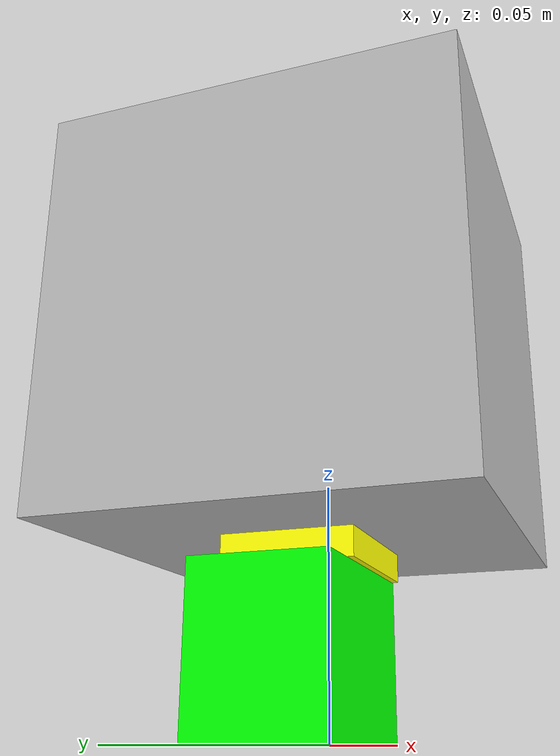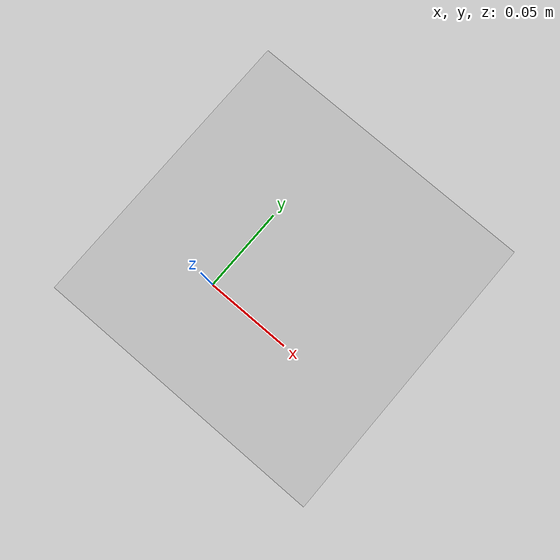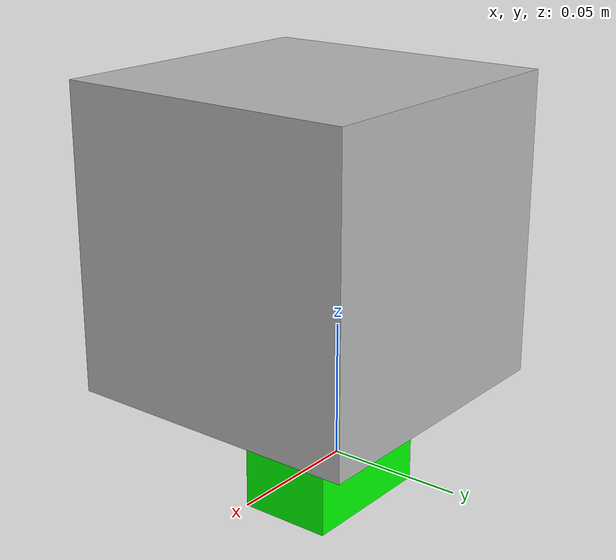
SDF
<?xml version='1.0'?>
<sdf version='1.4'>
  <model name="d_diff_drive_robot">

     <link name='Motor1'>
        <pose>0.025 0.016 0.019 0 0 0</pose>
 	<inertial>
	 <mass>56</mass>
	</inertial>
       <collision name='collision'>
          <geometry>
            <box>
              <size>.05 .032 .038</size>
            </box>
          </geometry>
        </collision>

        <visual name='visual'>
          <geometry>
            <box>
              <size>.05 .032 .038</size>
            </box>
          </geometry>
	  <material>
	    <ambient>0 1 0 1</ambient>
	      <diffuse>0 1 0 1</diffuse>
	      <specular>0.1 0.1 0.1 1</specular>
	      <emissive>0 0 0 0</emissive>
	  </material>
        </visual>

  </link>
     <link name='Motor2'>
  	  <pose>0.036 0.016 0.064 0 0 0</pose>

        <collision name='collision'>
          <geometry>
            <box>
              <size>.038 .032 .050</size>
            </box>
          </geometry>
        </collision>

        <visual name='visual'>
          <geometry>
            <box>
              <size>.038 .032 .050</size>
            </box>
          </geometry>
	  <material>
	    <ambient>1 1 0 1</ambient>
	      <diffuse>1 1 0 1</diffuse>
	      <specular>0.1 0.1 0.1 1</specular>
	      <emissive>0 0 0 0</emissive>
	  </material>
        </visual>

  </link>

<!-- MotorTop1 -->

  <link name="MotorTop1">
    <pose>0.036 0.016 0.039 0 0 0</pose>
    <collision name="collision">
      <geometry>
        <cylinder>
          <radius>.011</radius>
          <length>.002</length>
        </cylinder>
      </geometry>
    </collision>
    <visual name="visual">
      <geometry>
        <cylinder>
          <radius>.011</radius>
          <length>.002</length>
        </cylinder>
      </geometry>
    </visual>
  </link>

<!-- MotorTop2 -->

  <link name="MotorTop2">
  	  <pose>0.037 0.0 0.075 1.570796327 0 0</pose>
    <collision name="collision">
      <geometry>
        <cylinder>
          <radius>.011</radius>
          <length>.002</length>
        </cylinder>
      </geometry>
    </collision>
    <visual name="visual">
      <geometry>
        <cylinder>
          <radius>.011</radius>
          <length>.002</length>
        </cylinder>
      </geometry>
    </visual>
  </link>

<!-- Axel -->
<joint type="revolute" name="right_wheel_hinge">

    <pose>0.00 0.00 -0.01 0 0 0</pose>
    <child>MotorTop1</child>
    <parent>Motor1</parent>
    <axis>
      <xyz>0 0 1</xyz>
    </axis>
  </joint>

  <joint type="revolute" name="MotorTop1_Motor2">

    <pose>0 0 0.0 0 0 0</pose>
    <child>Motor2</child>
    <parent>MotorTop1</parent>
    <axis>
      <xyz>0 0 1</xyz>
      <limit>
        <upper>0</upper>
        <lower>0</lower>
      </limit>
    </axis>
  </joint>

<joint type="revolute" name="left_wheel_hinge">

  	  <pose>-0.0 0.0 0.0 0 0 0</pose>
    <child>MotorTop2</child>
    <parent>Motor2</parent>
    <axis>
      <xyz>0 1 0</xyz>
      <limit>
        <upper>2.617993878</upper>
        <lower>-2.617993878</lower>
      </limit>
    </axis>
  </joint>

   <include>
      <uri>model://camera</uri>
  	  <pose>0.037 0.016 0.096 0 0 0</pose>
      <name>camera</name>
    </include>
  <joint name="camera_joint_2" type="revolute">
    <child>camera::link</child>
    <parent>MotorTop2</parent>
    <axis>
      <xyz>0 0 0</xyz>
      <limit>
        <upper>0</upper>
        <lower>0</lower>
      </limit>
    </axis>

  </joint>

    <plugin filename="libmodel_diff_drive.so" name="model_diff_drive_plugin">

     <left_wheel_hinge>left_wheel_hinge</left_wheel_hinge>
      <right_wheel_hinge>right_wheel_hinge</right_wheel_hinge>
    </plugin>
  </model>

</sdf>

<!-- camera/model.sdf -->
<sdf version="1.5">
  <model name="camera">
    <pose>0 0 0.05 0 0 0</pose>
    <link name="link">
      <inertial>
        <mass>0.1</mass>
        <inertia>
          <ixx>0.000166667</ixx>
          <iyy>0.000166667</iyy>
          <izz>0.000166667</izz>
        </inertia>
      </inertial>
      <collision name="collision">
        <geometry>
          <box>
            <size>0.1 0.1 0.1</size>
          </box>
        </geometry>
      </collision>
      <visual name="visual">
        <geometry>
          <box>
            <size>0.1 0.1 0.1</size>
          </box>
        </geometry>
      </visual>
      <sensor name="camera" type="camera">
        <camera>
          <horizontal_fov>1.047</horizontal_fov>
          <image>
            <width>320</width>
            <height>240</height>
          </image>
          <clip>
            <near>0.1</near>
            <far>100</far>
          </clip>
        </camera>
        <always_on>1</always_on>
        <update_rate>30</update_rate>
        <visualize>true</visualize>
      </sensor>
    </link>
  </model>
</sdf>
